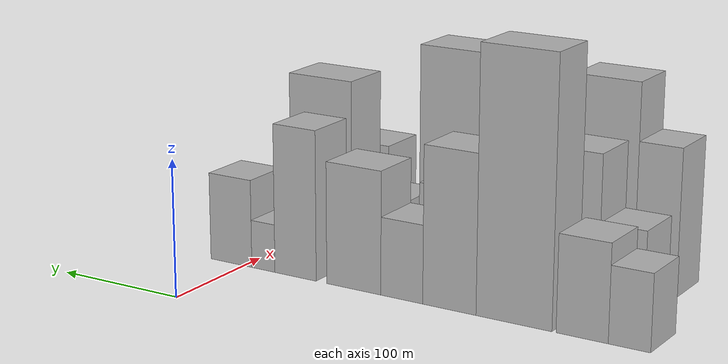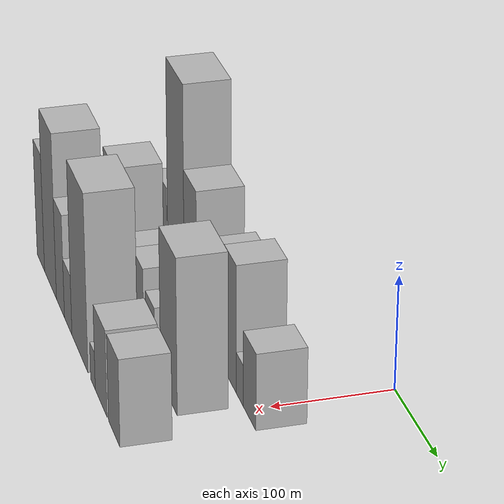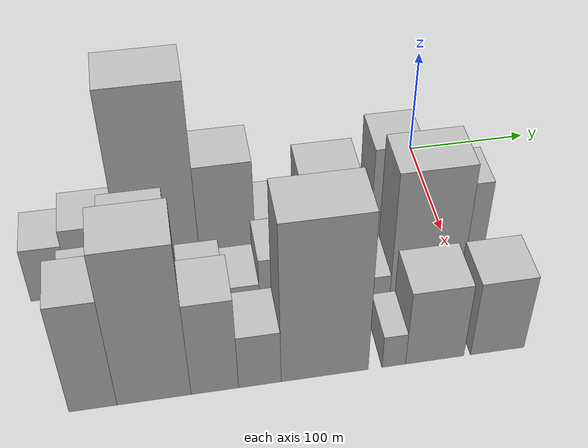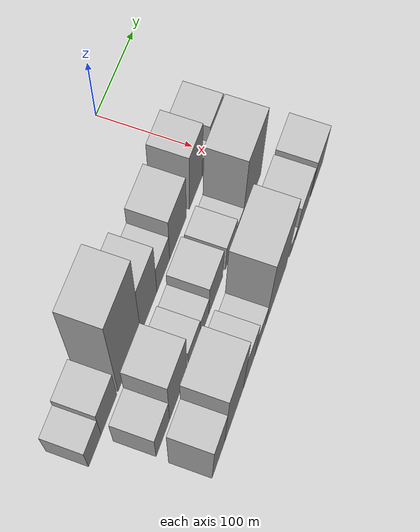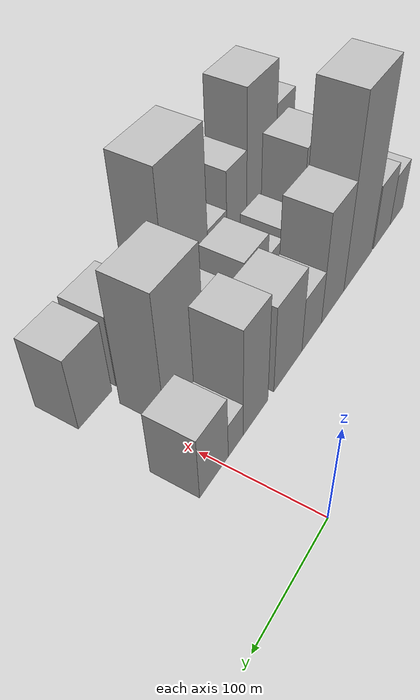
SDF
<sdf version="1.6">
 <world name="default">
  <model name="building_10">
   <static>1</static>
   <pose>100.0000 -306.1747 0 0.000000 0.000000 0.000000</pose>
   <link name="link">
    <pose>0 0 27.00 0 0 0</pose>
    <collision name="collision"><geometry><box><size>40.0000 29.8823 54.0000</size></box></geometry></collision>
    <visual name="visual">
     <cast_shadows>0</cast_shadows>
     <geometry><box><size>40.0000 29.8823 54.0000</size></box></geometry>
     <material>
      <script>
       <uri>model://HANNAS_wall/materials/scripts</uri>
       <uri>model://HANNAS_wall/materials/textures</uri>
       <name>vrc/HANNAS_wall</name>
      </script>
     </material>
    </visual>
   </link>
  </model>
  <model name="building_11">
   <static>1</static>
   <pose>100.0000 -272.3612 0 0.000000 0.000000 0.000000</pose>
   <link name="link">
    <pose>0 0 34.50 0 0 0</pose>
    <collision name="collision"><geometry><box><size>40.0000 37.7446 69.0000</size></box></geometry></collision>
    <visual name="visual">
     <cast_shadows>0</cast_shadows>
     <geometry><box><size>40.0000 37.7446 69.0000</size></box></geometry>
     <material>
      <script>
       <uri>model://HANNAS_wall/materials/scripts</uri>
       <uri>model://HANNAS_wall/materials/textures</uri>
       <name>vrc/HANNAS_wall</name>
      </script>
     </material>
    </visual>
   </link>
  </model>
  <model name="building_12">
   <static>1</static>
   <pose>100.0000 -221.8321 0 0.000000 0.000000 0.000000</pose>
   <link name="link">
    <pose>0 0 94.50 0 0 0</pose>
    <collision name="collision"><geometry><box><size>40.0000 57.3137 189.0000</size></box></geometry></collision>
    <visual name="visual">
     <cast_shadows>0</cast_shadows>
     <geometry><box><size>40.0000 57.3137 189.0000</size></box></geometry>
     <material>
      <script>
       <uri>model://HANNAS_wall/materials/scripts</uri>
       <uri>model://HANNAS_wall/materials/textures</uri>
       <name>vrc/HANNAS_wall</name>
      </script>
     </material>
    </visual>
   </link>
  </model>
  <model name="building_13">
   <static>1</static>
   <pose>100.0000 -172.2524 0 0.000000 0.000000 0.000000</pose>
   <link name="link">
    <pose>0 0 57.00 0 0 0</pose>
    <collision name="collision"><geometry><box><size>40.0000 41.8458 114.0000</size></box></geometry></collision>
    <visual name="visual">
     <cast_shadows>0</cast_shadows>
     <geometry><box><size>40.0000 41.8458 114.0000</size></box></geometry>
     <material>
      <script>
       <uri>model://HANNAS_wall/materials/scripts</uri>
       <uri>model://HANNAS_wall/materials/textures</uri>
       <name>vrc/HANNAS_wall</name>
      </script>
     </material>
    </visual>
   </link>
  </model>
  <model name="building_14">
   <static>1</static>
   <pose>100.0000 -134.3879 0 0.000000 0.000000 0.000000</pose>
   <link name="link">
    <pose>0 0 28.50 0 0 0</pose>
    <collision name="collision"><geometry><box><size>40.0000 33.8833 57.0000</size></box></geometry></collision>
    <visual name="visual">
     <cast_shadows>0</cast_shadows>
     <geometry><box><size>40.0000 33.8833 57.0000</size></box></geometry>
     <material>
      <script>
       <uri>model://HANNAS_wall/materials/scripts</uri>
       <uri>model://HANNAS_wall/materials/textures</uri>
       <name>vrc/HANNAS_wall</name>
      </script>
     </material>
    </visual>
   </link>
  </model>
  <model name="building_15">
   <static>1</static>
   <pose>100.0000 -94.8387 0 0.000000 0.000000 0.000000</pose>
   <link name="link">
    <pose>0 0 45.00 0 0 0</pose>
    <collision name="collision"><geometry><box><size>40.0000 45.2150 90.0000</size></box></geometry></collision>
    <visual name="visual">
     <cast_shadows>0</cast_shadows>
     <geometry><box><size>40.0000 45.2150 90.0000</size></box></geometry>
     <material>
      <script>
       <uri>model://HANNAS_wall/materials/scripts</uri>
       <uri>model://HANNAS_wall/materials/textures</uri>
       <name>vrc/HANNAS_wall</name>
      </script>
     </material>
    </visual>
   </link>
  </model>
  <model name="building_16">
   <static>1</static>
   <pose>100.0000 -45.3089 0 0.000000 0.000000 0.000000</pose>
   <link name="link">
    <pose>0 0 55.50 0 0 0</pose>
    <collision name="collision"><geometry><box><size>40.0000 35.8447 111.0000</size></box></geometry></collision>
    <visual name="visual">
     <cast_shadows>0</cast_shadows>
     <geometry><box><size>40.0000 35.8447 111.0000</size></box></geometry>
     <material>
      <script>
       <uri>model://HANNAS_wall/materials/scripts</uri>
       <uri>model://HANNAS_wall/materials/textures</uri>
       <name>vrc/HANNAS_wall</name>
      </script>
     </material>
    </visual>
   </link>
  </model>
  <model name="building_17">
   <static>1</static>
   <pose>100.0000 -17.1245 0 0.000000 0.000000 0.000000</pose>
   <link name="link">
    <pose>0 0 18.00 0 0 0</pose>
    <collision name="collision"><geometry><box><size>40.0000 20.5241 36.0000</size></box></geometry></collision>
    <visual name="visual">
     <cast_shadows>0</cast_shadows>
     <geometry><box><size>40.0000 20.5241 36.0000</size></box></geometry>
     <material>
      <script>
       <uri>model://HANNAS_wall/materials/scripts</uri>
       <uri>model://HANNAS_wall/materials/textures</uri>
       <name>vrc/HANNAS_wall</name>
      </script>
     </material>
    </visual>
   </link>
  </model>
  <model name="building_18">
   <static>1</static>
   <pose>100.0000 11.6222 0 0.000000 0.000000 0.000000</pose>
   <link name="link">
    <pose>0 0 33.00 0 0 0</pose>
    <collision name="collision"><geometry><box><size>40.0000 36.9693 66.0000</size></box></geometry></collision>
    <visual name="visual">
     <cast_shadows>0</cast_shadows>
     <geometry><box><size>40.0000 36.9693 66.0000</size></box></geometry>
     <material>
      <script>
       <uri>model://HANNAS_wall/materials/scripts</uri>
       <uri>model://HANNAS_wall/materials/textures</uri>
       <name>vrc/HANNAS_wall</name>
      </script>
     </material>
    </visual>
   </link>
  </model>
  <model name="building_44">
   <static>1</static>
   <pose>152.0000 -276.0506 0 0.000000 0.000000 0.000000</pose>
   <link name="link">
    <pose>0 0 31.50 0 0 0</pose>
    <collision name="collision"><geometry><box><size>40.0000 34.1118 63.0000</size></box></geometry></collision>
    <visual name="visual">
     <cast_shadows>0</cast_shadows>
     <geometry><box><size>40.0000 34.1118 63.0000</size></box></geometry>
     <material>
      <script>
       <uri>model://HANNAS_wall/materials/scripts</uri>
       <uri>model://HANNAS_wall/materials/textures</uri>
       <name>vrc/HANNAS_wall</name>
      </script>
     </material>
    </visual>
   </link>
  </model>
  <model name="building_45">
   <static>1</static>
   <pose>152.0000 -237.1053 0 0.000000 0.000000 0.000000</pose>
   <link name="link">
    <pose>0 0 55.50 0 0 0</pose>
    <collision name="collision"><geometry><box><size>40.0000 43.7787 111.0000</size></box></geometry></collision>
    <visual name="visual">
     <cast_shadows>0</cast_shadows>
     <geometry><box><size>40.0000 43.7787 111.0000</size></box></geometry>
     <material>
      <script>
       <uri>model://HANNAS_wall/materials/scripts</uri>
       <uri>model://HANNAS_wall/materials/textures</uri>
       <name>vrc/HANNAS_wall</name>
      </script>
     </material>
    </visual>
   </link>
  </model>
  <model name="building_46">
   <static>1</static>
   <pose>152.0000 -195.6195 0 0.000000 0.000000 0.000000</pose>
   <link name="link">
    <pose>0 0 27.00 0 0 0</pose>
    <collision name="collision"><geometry><box><size>40.0000 31.1930 54.0000</size></box></geometry></collision>
    <visual name="visual">
     <cast_shadows>0</cast_shadows>
     <geometry><box><size>40.0000 31.1930 54.0000</size></box></geometry>
     <material>
      <script>
       <uri>model://HANNAS_wall/materials/scripts</uri>
       <uri>model://HANNAS_wall/materials/textures</uri>
       <name>vrc/HANNAS_wall</name>
      </script>
     </material>
    </visual>
   </link>
  </model>
  <model name="building_47">
   <static>1</static>
   <pose>152.0000 -167.8208 0 0.000000 0.000000 0.000000</pose>
   <link name="link">
    <pose>0 0 22.50 0 0 0</pose>
    <collision name="collision"><geometry><box><size>40.0000 24.4042 45.0000</size></box></geometry></collision>
    <visual name="visual">
     <cast_shadows>0</cast_shadows>
     <geometry><box><size>40.0000 24.4042 45.0000</size></box></geometry>
     <material>
      <script>
       <uri>model://HANNAS_wall/materials/scripts</uri>
       <uri>model://HANNAS_wall/materials/textures</uri>
       <name>vrc/HANNAS_wall</name>
      </script>
     </material>
    </visual>
   </link>
  </model>
  <model name="building_48">
   <static>1</static>
   <pose>152.0000 -136.5145 0 0.000000 0.000000 0.000000</pose>
   <link name="link">
    <pose>0 0 34.50 0 0 0</pose>
    <collision name="collision"><geometry><box><size>40.0000 38.2084 69.0000</size></box></geometry></collision>
    <visual name="visual">
     <cast_shadows>0</cast_shadows>
     <geometry><box><size>40.0000 38.2084 69.0000</size></box></geometry>
     <material>
      <script>
       <uri>model://HANNAS_wall/materials/scripts</uri>
       <uri>model://HANNAS_wall/materials/textures</uri>
       <name>vrc/HANNAS_wall</name>
      </script>
     </material>
    </visual>
   </link>
  </model>
  <model name="building_49">
   <static>1</static>
   <pose>152.0000 -94.4691 0 0.000000 0.000000 0.000000</pose>
   <link name="link">
    <pose>0 0 27.00 0 0 0</pose>
    <collision name="collision"><geometry><box><size>40.0000 29.8825 54.0000</size></box></geometry></collision>
    <visual name="visual">
     <cast_shadows>0</cast_shadows>
     <geometry><box><size>40.0000 29.8825 54.0000</size></box></geometry>
     <material>
      <script>
       <uri>model://HANNAS_wall/materials/scripts</uri>
       <uri>model://HANNAS_wall/materials/textures</uri>
       <name>vrc/HANNAS_wall</name>
      </script>
     </material>
    </visual>
   </link>
  </model>
  <model name="building_50">
   <static>1</static>
   <pose>152.0000 -69.6777 0 0.000000 0.000000 0.000000</pose>
   <link name="link">
    <pose>0 0 18.00 0 0 0</pose>
    <collision name="collision"><geometry><box><size>40.0000 19.7003 36.0000</size></box></geometry></collision>
    <visual name="visual">
     <cast_shadows>0</cast_shadows>
     <geometry><box><size>40.0000 19.7003 36.0000</size></box></geometry>
     <material>
      <script>
       <uri>model://HANNAS_wall/materials/scripts</uri>
       <uri>model://HANNAS_wall/materials/textures</uri>
       <name>vrc/HANNAS_wall</name>
      </script>
     </material>
    </visual>
   </link>
  </model>
  <model name="building_51">
   <static>1</static>
   <pose>152.0000 -32.9477 0 0.000000 0.000000 0.000000</pose>
   <link name="link">
    <pose>0 0 67.50 0 0 0</pose>
    <collision name="collision"><geometry><box><size>40.0000 53.7598 135.0000</size></box></geometry></collision>
    <visual name="visual">
     <cast_shadows>0</cast_shadows>
     <geometry><box><size>40.0000 53.7598 135.0000</size></box></geometry>
     <material>
      <script>
       <uri>model://HANNAS_wall/materials/scripts</uri>
       <uri>model://HANNAS_wall/materials/textures</uri>
       <name>vrc/HANNAS_wall</name>
      </script>
     </material>
    </visual>
   </link>
  </model>
  <model name="building_78">
   <static>1</static>
   <pose>204.0000 -278.1028 0 0.000000 0.000000 0.000000</pose>
   <link name="link">
    <pose>0 0 54.00 0 0 0</pose>
    <collision name="collision"><geometry><box><size>40.0000 32.4343 108.0000</size></box></geometry></collision>
    <visual name="visual">
     <cast_shadows>0</cast_shadows>
     <geometry><box><size>40.0000 32.4343 108.0000</size></box></geometry>
     <material>
      <script>
       <uri>model://HANNAS_wall/materials/scripts</uri>
       <uri>model://HANNAS_wall/materials/textures</uri>
       <name>vrc/HANNAS_wall</name>
      </script>
     </material>
    </visual>
   </link>
  </model>
  <model name="building_79">
   <static>1</static>
   <pose>204.0000 -236.6239 0 0.000000 0.000000 0.000000</pose>
   <link name="link">
    <pose>0 0 75.00 0 0 0</pose>
    <collision name="collision"><geometry><box><size>40.0000 50.5235 150.0000</size></box></geometry></collision>
    <visual name="visual">
     <cast_shadows>0</cast_shadows>
     <geometry><box><size>40.0000 50.5235 150.0000</size></box></geometry>
     <material>
      <script>
       <uri>model://HANNAS_wall/materials/scripts</uri>
       <uri>model://HANNAS_wall/materials/textures</uri>
       <name>vrc/HANNAS_wall</name>
      </script>
     </material>
    </visual>
   </link>
  </model>
  <model name="building_80">
   <static>1</static>
   <pose>204.0000 -194.9050 0 0.000000 0.000000 0.000000</pose>
   <link name="link">
    <pose>0 0 46.50 0 0 0</pose>
    <collision name="collision"><geometry><box><size>40.0000 32.9144 93.0000</size></box></geometry></collision>
    <visual name="visual">
     <cast_shadows>0</cast_shadows>
     <geometry><box><size>40.0000 32.9144 93.0000</size></box></geometry>
     <material>
      <script>
       <uri>model://HANNAS_wall/materials/scripts</uri>
       <uri>model://HANNAS_wall/materials/textures</uri>
       <name>vrc/HANNAS_wall</name>
      </script>
     </material>
    </visual>
   </link>
  </model>
  <model name="building_81">
   <static>1</static>
   <pose>204.0000 -163.5365 0 0.000000 0.000000 0.000000</pose>
   <link name="link">
    <pose>0 0 27.00 0 0 0</pose>
    <collision name="collision"><geometry><box><size>40.0000 29.8226 54.0000</size></box></geometry></collision>
    <visual name="visual">
     <cast_shadows>0</cast_shadows>
     <geometry><box><size>40.0000 29.8226 54.0000</size></box></geometry>
     <material>
      <script>
       <uri>model://HANNAS_wall/materials/scripts</uri>
       <uri>model://HANNAS_wall/materials/textures</uri>
       <name>vrc/HANNAS_wall</name>
      </script>
     </material>
    </visual>
   </link>
  </model>
  <model name="building_82">
   <static>1</static>
   <pose>204.0000 -117.7614 0 0.000000 0.000000 0.000000</pose>
   <link name="link">
    <pose>0 0 78.00 0 0 0</pose>
    <collision name="collision"><geometry><box><size>40.0000 61.7275 156.0000</size></box></geometry></collision>
    <visual name="visual">
     <cast_shadows>0</cast_shadows>
     <geometry><box><size>40.0000 61.7275 156.0000</size></box></geometry>
     <material>
      <script>
       <uri>model://HANNAS_wall/materials/scripts</uri>
       <uri>model://HANNAS_wall/materials/textures</uri>
       <name>vrc/HANNAS_wall</name>
      </script>
     </material>
    </visual>
   </link>
  </model>
  <model name="building_83">
   <static>1</static>
   <pose>204.0000 -68.3918 0 0.000000 0.000000 0.000000</pose>
   <link name="link">
    <pose>0 0 16.50 0 0 0</pose>
    <collision name="collision"><geometry><box><size>40.0000 17.0117 33.0000</size></box></geometry></collision>
    <visual name="visual">
     <cast_shadows>0</cast_shadows>
     <geometry><box><size>40.0000 17.0117 33.0000</size></box></geometry>
     <material>
      <script>
       <uri>model://HANNAS_wall/materials/scripts</uri>
       <uri>model://HANNAS_wall/materials/textures</uri>
       <name>vrc/HANNAS_wall</name>
      </script>
     </material>
    </visual>
   </link>
  </model>
  <model name="building_84">
   <static>1</static>
   <pose>204.0000 -38.6479 0 0.000000 0.000000 0.000000</pose>
   <link name="link">
    <pose>0 0 37.50 0 0 0</pose>
    <collision name="collision"><geometry><box><size>40.0000 42.4760 75.0000</size></box></geometry></collision>
    <visual name="visual">
     <cast_shadows>0</cast_shadows>
     <geometry><box><size>40.0000 42.4760 75.0000</size></box></geometry>
     <material>
      <script>
       <uri>model://HANNAS_wall/materials/scripts</uri>
       <uri>model://HANNAS_wall/materials/textures</uri>
       <name>vrc/HANNAS_wall</name>
      </script>
     </material>
    </visual>
   </link>
  </model>
  <model name="building_85">
   <static>1</static>
   <pose>204.0000 7.3944 0 0.000000 0.000000 0.000000</pose>
   <link name="link">
    <pose>0 0 37.50 0 0 0</pose>
    <collision name="collision"><geometry><box><size>40.0000 39.6085 75.0000</size></box></geometry></collision>
    <visual name="visual">
     <cast_shadows>0</cast_shadows>
     <geometry><box><size>40.0000 39.6085 75.0000</size></box></geometry>
     <material>
      <script>
       <uri>model://HANNAS_wall/materials/scripts</uri>
       <uri>model://HANNAS_wall/materials/textures</uri>
       <name>vrc/HANNAS_wall</name>
      </script>
     </material>
    </visual>
   </link>
  </model>
 </world>
</sdf>
